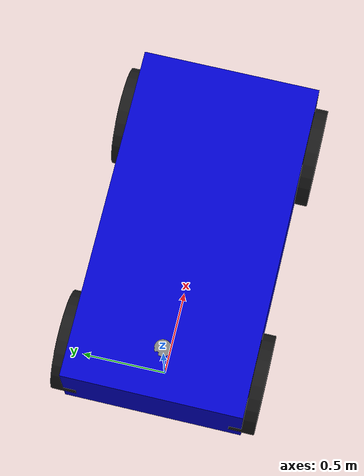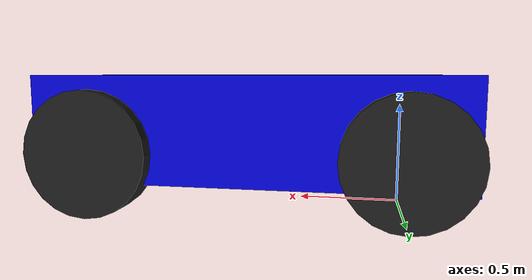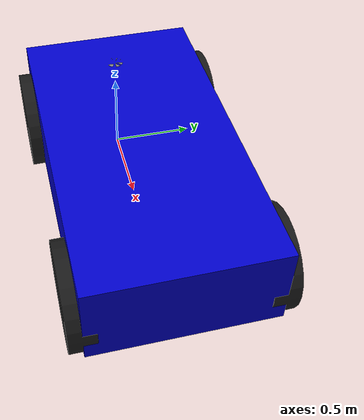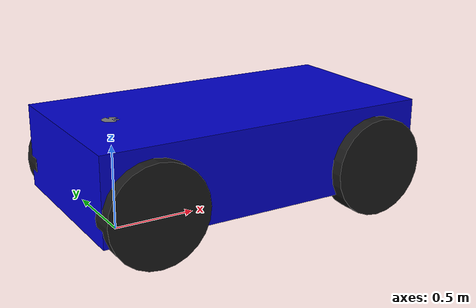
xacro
<?xml version="1.0"?>
<robot xmlns:xacro="http://www.ros.org/wiki/xacro" name="evoart">

  <!-- Properties -->
  <xacro:property name="wheelbase" value="1.425" />
  <xacro:property name="track_width" value="1.05" />
  <xacro:property name="wheel_radius" value="0.293" />
  <xacro:property name="wheel_width" value="0.15" />
  <xacro:property name="chassis_length" value="2.0" />
  <xacro:property name="chassis_width" value="1.05" />
  <xacro:property name="chassis_height" value="0.5" />
  <xacro:property name="ground_clearance" value="0.15" />

  <xacro:include filename="sensors.xacro" />

  <!-- Base Link -->
  <link name="base_link">
  </link>

  <!-- Chassis -->
  <link name="chassis">
    <visual>
      <origin xyz="${wheelbase/2} 0 ${ground_clearance + chassis_height/2}" rpy="0 0 0"/>
      <geometry>
        <box size="${chassis_length} ${chassis_width} ${chassis_height}"/>
      </geometry>
      <material name="blue">
        <color rgba="0 0 0.8 1"/>
      </material>
    </visual>
    <collision>
      <origin xyz="${wheelbase/2} 0 ${ground_clearance + chassis_height/2}" rpy="0 0 0"/>
      <geometry>
        <box size="${chassis_length} ${chassis_width} ${chassis_height}"/>
      </geometry>
    </collision>
    <inertial>
      <origin xyz="${wheelbase/2} 0 ${ground_clearance + chassis_height/2}" rpy="0 0 0"/>
      <mass value="50.0"/>
      <inertia ixx="4.5" ixy="0" ixz="0" iyy="16.6" iyz="0" izz="16.6"/>
    </inertial>
  </link>

  <joint name="base_to_chassis" type="fixed">
    <parent link="base_link"/>
    <child link="chassis"/>
    <origin xyz="0 0 0" rpy="0 0 0"/>
  </joint>

  <!-- Wheels Macro -->
  <xacro:macro name="wheel" params="prefix is_front x y">
    <link name="${prefix}_wheel">
      <visual>
        <origin xyz="0 0 0" rpy="1.570796 0 0"/>
        <geometry>
          <cylinder radius="${wheel_radius}" length="${wheel_width}"/>
        </geometry>
        <material name="black">
          <color rgba="0.1 0.1 0.1 1"/>
        </material>
      </visual>
      <collision>
        <origin xyz="0 0 0" rpy="1.570796 0 0"/>
        <geometry>
          <cylinder radius="${wheel_radius}" length="${wheel_width}"/>
        </geometry>
      </collision>
      <inertial>
        <mass value="5.0"/>
        <inertia ixx="0.1" ixy="0" ixz="0" iyy="0.1" iyz="0" izz="0.1"/>
      </inertial>
    </link>

    <xacro:if value="${is_front}">
      <link name="${prefix}_steer">
        <inertial>
          <mass value="0.1"/>
          <inertia ixx="0.01" ixy="0" ixz="0" iyy="0.01" iyz="0" izz="0.01"/>
        </inertial>
      </link>

      <joint name="${prefix}_steering_joint" type="revolute">
        <parent link="chassis"/>
        <child link="${prefix}_steer"/>
        <origin xyz="${x} ${y} ${wheel_radius}" rpy="0 0 0"/>
        <axis xyz="0 0 1"/>
        <limit lower="-0.392699" upper="0.392699" effort="100" velocity="1.0"/>
      </joint>

      <joint name="${prefix}_wheel_joint" type="continuous">
        <parent link="${prefix}_steer"/>
        <child link="${prefix}_wheel"/>
        <origin xyz="0 0 0" rpy="0 0 0"/>
        <axis xyz="0 1 0"/>
      </joint>
    </xacro:if>

    <xacro:unless value="${is_front}">
      <joint name="${prefix}_wheel_joint" type="continuous">
        <parent link="chassis"/>
        <child link="${prefix}_wheel"/>
        <origin xyz="${x} ${y} ${wheel_radius}" rpy="0 0 0"/>
        <axis xyz="0 1 0"/>
      </joint>
    </xacro:unless>
  </xacro:macro>

  <!-- Instantiate Wheels -->
  <xacro:wheel prefix="rear_left" is_front="false" x="0" y="${track_width/2}"/>
  <xacro:wheel prefix="rear_right" is_front="false" x="0" y="${-track_width/2}"/>
  <xacro:wheel prefix="front_left" is_front="true" x="${wheelbase}" y="${track_width/2}"/>
  <xacro:wheel prefix="front_right" is_front="true" x="${wheelbase}" y="${-track_width/2}"/>

  <!-- Gazebo Harmonic (v8) Plugins -->
  <gazebo>
    <plugin filename="gz-sim-ackermann-steering-system" name="gz::sim::systems::AckermannSteering">
      <left_joint>rear_left_wheel_joint</left_joint>
      <right_joint>rear_right_wheel_joint</right_joint>
      <left_steering_joint>front_left_steering_joint</left_steering_joint>
      <right_steering_joint>front_right_steering_joint</right_steering_joint>
      <wheel_base>${wheelbase}</wheel_base>
      <wheel_separation>${track_width}</wheel_separation>
      <wheel_radius>${wheel_radius}</wheel_radius>
      <min_velocity>-1.5</min_velocity>
      <max_velocity>4.17</max_velocity>
      <min_angle>-0.392699</min_angle>
      <max_angle>0.392699</max_angle>
      <topic>cmd_vel</topic>
      <odom_topic>odom</odom_topic>
      <frame_id>odom</frame_id>
      <child_frame_id>base_link</child_frame_id>
    </plugin>

    <plugin filename="gz-sim-joint-state-publisher-system" name="gz::sim::systems::JointStatePublisher">
      <topic>joint_states</topic>
      <joint_name>front_left_steering_joint</joint_name>
      <joint_name>front_right_steering_joint</joint_name>
      <joint_name>front_left_wheel_joint</joint_name>
      <joint_name>front_right_wheel_joint</joint_name>
      <joint_name>rear_left_wheel_joint</joint_name>
      <joint_name>rear_right_wheel_joint</joint_name>
    </plugin>
  </gazebo>
</robot>

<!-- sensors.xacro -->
<robot xmlns:xacro="http://www.ros.org/wiki/xacro">
  <xacro:property name="camera_height" value="0.4"/>
  <xacro:property name="lidar_height" value="0.6"/>

  <link name="camera_link">
    <visual>
      <geometry>
        <box size="0.05 0.15 0.05"/>
      </geometry>
      <material name="grey">
        <color rgba="0.5 0.5 0.5 1"/>
      </material>
    </visual>
  </link>

  <joint name="camera_joint" type="fixed">
    <parent link="chassis"/>
    <child link="camera_link"/>
    <origin xyz="${chassis_length/2} 0 ${camera_height}" rpy="0 0 0"/>
  </joint>

  <link name="velodyne">
    <visual>
      <geometry>
        <cylinder radius="0.05" length="0.1"/>
      </geometry>
      <material name="grey"/>
    </visual>
  </link>

  <joint name="lidar_joint" type="fixed">
    <parent link="chassis"/>
    <child link="velodyne"/>
    <origin xyz="0 0 ${lidar_height}" rpy="0 0 0"/>
  </joint>

  <gazebo reference="camera_link">
    <sensor type="camera" name="zed2i_camera">
      <update_rate>30.0</update_rate>
      <always_on>true</always_on>
      <visualize>true</visualize>
      <topic>camera/image_raw</topic>
      <gz_frame_id>camera_link</gz_frame_id>
      <camera>
        <horizontal_fov>1.3962634</horizontal_fov>
        <image>
          <width>640</width>
          <height>480</height>
          <format>R8G8B8</format>
        </image>
        <clip>
          <near>0.02</near>
          <far>300</far>
        </clip>
      </camera>
    </sensor>
  </gazebo>

  <gazebo reference="velodyne">
    <sensor type="gpu_lidar" name="vlp16_lidar">
      <pose>0 0 0 0 0 0</pose>
      <visualize>false</visualize>
      <update_rate>10</update_rate>
      <always_on>true</always_on>
      <topic>scan</topic>
      <gz_frame_id>velodyne</gz_frame_id>
      <ray>
        <scan>
          <horizontal>
            <samples>360</samples>
            <resolution>1</resolution>
            <min_angle>-3.14159</min_angle>
            <max_angle>3.14159</max_angle>
          </horizontal>
        </scan>
        <range>
          <min>0.10</min>
          <max>100.0</max>
          <resolution>0.01</resolution>
        </range>
      </ray>
    </sensor>
  </gazebo>
</robot>
